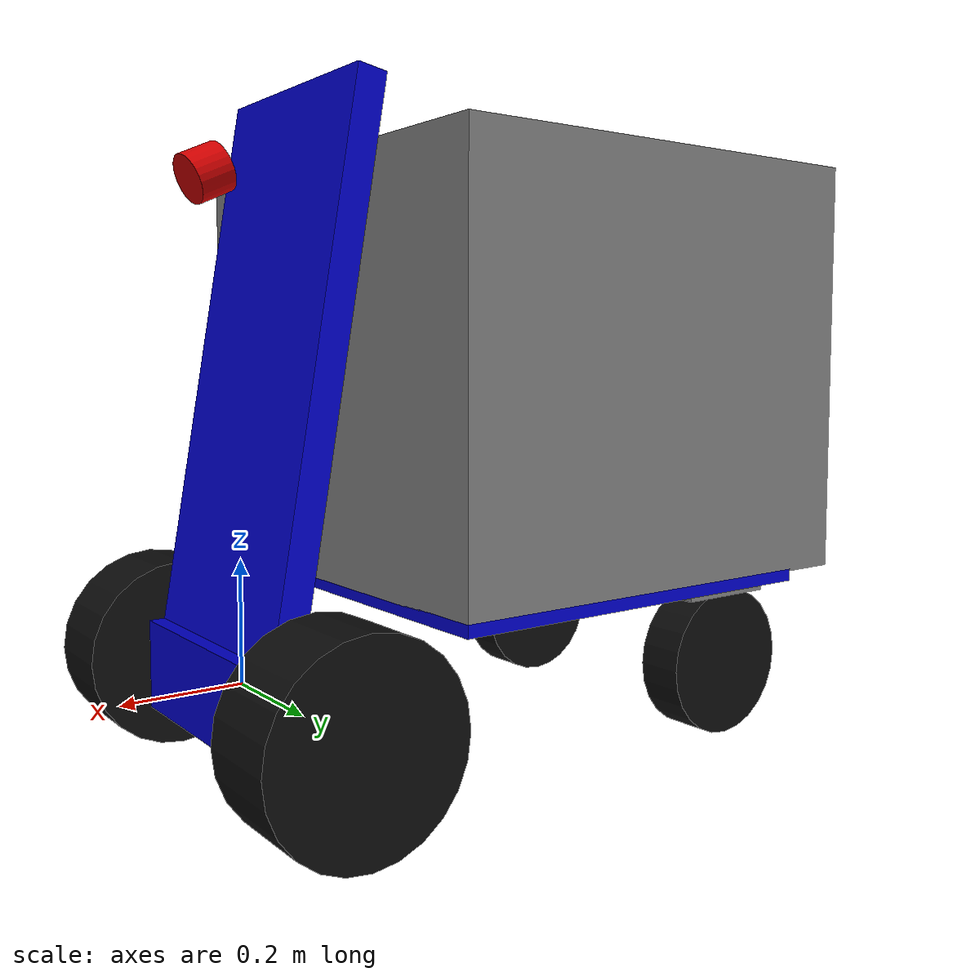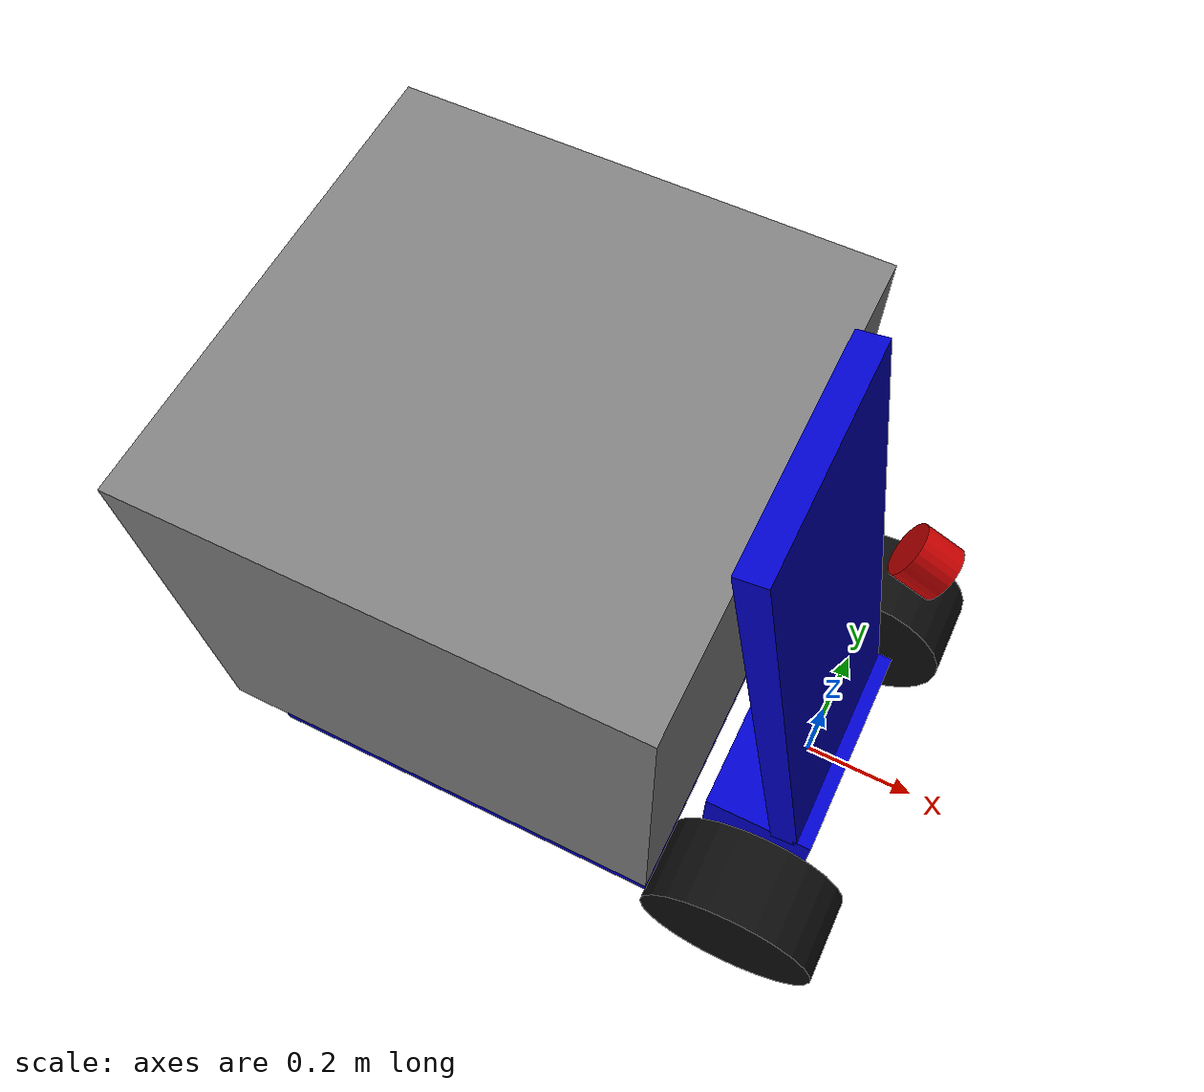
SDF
<?xml version="1.0" ?>
<sdf version="1.10">
  <model name="mk5_200">
    <static>false</static>

    <!-- ================== LINK PRINCIPAL (base_link) ================== -->
    <link name="base_link">
      <pose>0 0 0 0 0 0</pose>
      <inertial>
        <mass>54.0</mass>
        <inertia>
          <ixx>8.0</ixx><ixy>0</ixy><ixz>0</ixz>
          <iyy>8.0</iyy><iyz>0</iyz>
          <izz>8.0</izz>
        </inertia>
      </inertial>

      <!-- Bloc bas -->
      <collision name="base_block_col">
        <pose>-0.025 0 0 0 0 0</pose>
        <geometry><box><size>0.2 0.4 0.15</size></box></geometry>
      </collision>
      <visual name="base_block_vis">
        <pose>-0.025 0 0 0 0 0</pose>
        <geometry><box><size>0.2 0.4 0.15</size></box></geometry>
        <material>
          <ambient>0.0 0.0 0.8 1</ambient>
          <diffuse>0.0 0.0 0.8 1</diffuse>
        </material>
      </visual>

      <!-- Grande plaque -->

      <visual name="base_plate_vis">
        <pose>-0.5 0 0.143 0 0 0</pose>
        <geometry><box><size>0.7 0.8 0.02</size></box></geometry>
        <material>
          <ambient>0.0 0.0 0.8 1</ambient>
          <diffuse>0.0 0.0 0.8 1</diffuse>
        </material>
      </visual>

      <!-- Box haute -->
      <collision name="base_box_col">
        <pose>-0.55 0 0.5 0 0 0</pose>
        <geometry><box><size>0.8 0.8 0.7</size></box></geometry>
      </collision>
      <visual name="base_box_vis">
        <pose>-0.55 0 0.5 0 0 0</pose>
        <geometry><box><size>0.8 0.8 0.7</size></box></geometry>
        <material>
          <ambient>0.5 0.5 0.5 1</ambient>
          <diffuse>0.5 0.5 0.5 1</diffuse>
        </material>
      </visual>

      <!-- Plaque avant inclinée -->
      <collision name="front_plate_col">
        <pose>-0.05 0 0.5 0 1.4 0</pose>
        <geometry><box><size>0.9 0.4 0.05</size></box></geometry>
      </collision>
      <visual name="front_plate_vis">
        <pose>-0.05 0 0.5 0 1.4 0</pose>
        <geometry><box><size>0.9 0.4 0.05</size></box></geometry>
        <material>
          <ambient>0.0 0.0 0.8 1</ambient>
          <diffuse>0.0 0.0 0.8 1</diffuse>
        </material>
      </visual>
    </link>
    <!-- ================== FIN base_link ================== -->

    <!-- ================== SENSOR LIDAR ================== -->

<!-- ================== AIRY FRONT SENSOR ================== -->
<!-- ================== AIRY FRONT SENSOR ================== -->
<!-- ================== AIRY FRONT SENSOR ================== -->

<joint name="airy_front_joint" type="fixed">
  <parent>base_link</parent>
  <child>airy_front</child>
  <pose>0.05 0.0 0.8 0 2.0 0</pose> <!-- Relative position of airy_front to base_link -->
</joint>

<link name="airy_front">

  <!-- Collision -->
  <collision name="airy_front_col">
    <pose relative_to="airy_front_joint">0.0 0.0 0 0 0 0</pose>
    <geometry>
      <cylinder>
        <radius>0.04</radius>
        <length>0.06</length>
      </cylinder>
    </geometry>
  </collision>

  <!-- Visual -->
  <visual name="airy_front_vis">
    <pose relative_to="airy_front_joint">0.0 0.0 0 0 0 0</pose>
    <geometry>
      <cylinder>
        <radius>0.04</radius>
        <length>0.06</length>
      </cylinder>
    </geometry>
    <material>
      <ambient>0.8 0.0 0.0 1</ambient>
      <diffuse>0.8 0.0 0.0 1</diffuse>
    </material>
  </visual>

  <!-- LiDAR Sensor -->
  <sensor name="gpu_lidar" type="gpu_lidar">
    <pose relative_to="airy_front_joint">0 0 0 0 0 0</pose>
    <topic>/lidar</topic>
    <update_rate>10</update_rate>
    <ray>
      <scan>
        <horizontal>
          <samples>640</samples>
          <resolution>1</resolution>
          <min_angle>-1.396263</min_angle>
          <max_angle>1.396263</max_angle>
        </horizontal>
        <vertical>
          <samples>1</samples>
          <resolution>0.01</resolution>
          <min_angle>0</min_angle>
          <max_angle>0</max_angle>
        </vertical>
      </scan>
      <range>
        <min>0.08</min>
        <max>10.0</max>
        <resolution>0.01</resolution>
      </range>
    </ray>
    <always_on>1</always_on>
    <visualize>true</visualize>
  </sensor>

</link>

           <plugin
            filename="gz-sim-sensors-system"
            name="gz::sim::systems::Sensors">
            <render_engine>ogre2</render_engine>
        </plugin>

    <!-- ================== FIN SENSOR LIDAR ================== -->

    <!-- ================== ROUES MOTRICES ================== -->
    <link name="left_wheel">
      <pose>0 0.317 0 0 0 0</pose>
      <inertial>
        <mass>8.0</mass>
        <inertia>
          <ixx>0.01</ixx><ixy>0</ixy><ixz>0</ixz>
          <iyy>0.01</iyy><iyz>0</iyz>
          <izz>0.01</izz>
        </inertia>
      </inertial>
      <collision name="c">
        <pose>0 0 0 1.570796 0 0</pose>
        <geometry><cylinder><radius>0.162</radius><length>0.15</length></cylinder></geometry>
        <surface>
          <friction><ode><mu>1.0</mu><mu2>1.0</mu2></ode></friction>
        </surface>
      </collision>
      <visual name="v">
        <pose>0 0 0 1.570796 0 0</pose>
        <geometry><cylinder><radius>0.162</radius><length>0.15</length></cylinder></geometry>
        <material>
          <ambient>0.05 0.05 0.05 1</ambient>
          <diffuse>0.05 0.05 0.05 1</diffuse>
        </material>
      </visual>
    </link>
    <joint name="left_wheel_joint" type="revolute">
  <parent>base_link</parent>
  <child>left_wheel</child>
  <axis>
    <xyz>0 1 0</xyz>
    <!-- Limites de position très larges pour simuler rotation quasi infinie -->
    <limit>
      <lower>-1e16</lower>
      <upper>1e16</upper>
      <!-- Effort max : assez grand pour ne pas saturer, tu peux ajuster -->
      <effort>1e6</effort>
      <!-- Vitesse angulaire max (rad/s) : ici 50 rad/s (~477 rpm) -->
      <velocity>50.0</velocity>
    </limit>
    <!-- Optionnel: amortissement léger pour stabilité -->
    <dynamics>
      <damping>0.1</damping>
      <friction>0.0</friction>
    </dynamics>
  </axis>
</joint>

    <link name="right_wheel">
      <pose>0 -0.317 0 0 0 0</pose>
      <inertial>
        <mass>8.0</mass>
        <inertia>
          <ixx>0.01</ixx><ixy>0</ixy><ixz>0</ixz>
          <iyy>0.01</iyy><iyz>0</iyz>
          <izz>0.01</izz>
        </inertia>
      </inertial>
      <collision name="c">
        <pose>0 0 0 1.570796 0 0</pose>
        <geometry><cylinder><radius>0.162</radius><length>0.15</length></cylinder></geometry>
        <surface>
          <friction><ode><mu>1.0</mu><mu2>1.0</mu2></ode></friction>
        </surface>
      </collision>
      <visual name="v">
        <pose>0 0 0 1.570796 0 0</pose>
        <geometry><cylinder><radius>0.162</radius><length>0.15</length></cylinder></geometry>
        <material>
          <ambient>0.05 0.05 0.05 1</ambient>
          <diffuse>0.05 0.05 0.05 1</diffuse>
        </material>
      </visual>
    </link>
<joint name="right_wheel_joint" type="revolute">
  <parent>base_link</parent>
  <child>right_wheel</child>
  <axis>
    <xyz>0 1 0</xyz>
    <!-- Limites de position très larges pour simuler rotation quasi infinie -->
    <limit>
      <lower>-1e16</lower>
      <upper>1e16</upper>
      <!-- Effort max : assez grand pour ne pas saturer, tu peux ajuster -->
      <effort>1e6</effort>
      <!-- Vitesse angulaire max (rad/s) : ici 50 rad/s (~477 rpm) -->
      <velocity>50.0</velocity>
    </limit>
    <!-- Optionnel: amortissement léger pour stabilité -->
    <dynamics>
      <damping>0.1</damping>
      <friction>0.0</friction>
    </dynamics>
  </axis>
</joint>

  <!-- ================== CASTERS ================== -->
<!-- LEFT CASTER PLATE -->
<link name="left_caster_plate">
  <pose>-0.747 0.26 0.115 0 0 0</pose>
  <inertial>
    <mass>0.5</mass>
    <inertia>
      <ixx>0.001</ixx><ixy>0</ixy><ixz>0</ixz>
      <iyy>0.001</iyy><iyz>0</iyz>
      <izz>0.001</izz>
    </inertia>
  </inertial>

  <visual name="v">
    <geometry><box><size>0.18 0.18 0.01</size></box></geometry>
    <material>
      <ambient>0.5 0.5 0.5 1</ambient>
      <diffuse>0.5 0.5 0.5 1</diffuse>
    </material>
  </visual>
</link>

<joint name="left_caster_plate_joint" type="revolute">
  <parent>base_link</parent>
  <child>left_caster_plate</child>
  <axis>
    <xyz>0 0 1</xyz>
    <limit><lower>-3.14159</lower><upper>3.14159</upper></limit>
    <dynamics><damping>0.2</damping></dynamics>
  </axis>
</joint>

<!-- LEFT CASTER WHEEL -->
<link name="left_caster_wheel">
  <pose>-0.807 0.26 -0.025 0 0 0</pose>
  <inertial>
    <mass>2.0</mass>
    <inertia>
      <ixx>0.05</ixx><ixy>0</ixy><ixz>0</ixz>
      <iyy>0.05</iyy><iyz>0</iyz>
      <izz>0.05</izz>
    </inertia>
  </inertial>
  <collision name="c">
    <pose>0 0 0 1.570796 0 0</pose>
    <geometry><cylinder><radius>0.13</radius><length>0.08</length></cylinder></geometry>
  </collision>
  <visual name="v">
    <pose>0 0 0 1.570796 0 0</pose>
    <geometry><cylinder><radius>0.13</radius><length>0.08</length></cylinder></geometry>
    <material>
      <ambient>0.05 0.05 0.05 1</ambient>
      <diffuse>0.05 0.05 0.05 1</diffuse>
    </material>
  </visual>
</link>

<joint name="left_caster_wheel_joint" type="revolute">
  <parent>left_caster_plate</parent>
  <child>left_caster_wheel</child>
  <axis>
    <xyz>0 1 0</xyz>
    <limit><lower>-100000</lower><upper>100000</upper></limit>
    <dynamics>
      <damping>0.05</damping> <!-- Friction added via damping -->
      <friction>0.01</friction> <!-- Adding a small friction to stabilize -->
    </dynamics>
  </axis>
</joint>

<!-- RIGHT CASTER PLATE -->
<link name="right_caster_plate">
  <pose>-0.747 -0.26 0.115 0 0 0</pose>
  <inertial>
    <mass>0.5</mass>
    <inertia>
      <ixx>0.001</ixx><ixy>0</ixy><ixz>0</ixz>
      <iyy>0.001</iyy><iyz>0</iyz>
      <izz>0.001</izz>
    </inertia>
  </inertial>

  <visual name="v">
    <geometry><box><size>0.18 0.18 0.01</size></box></geometry>
    <material>
      <ambient>0.5 0.5 0.5 1</ambient>
      <diffuse>0.5 0.5 0.5 1</diffuse>
    </material>
  </visual>
</link>

<joint name="right_caster_plate_joint" type="revolute">
  <parent>base_link</parent>
  <child>right_caster_plate</child>
  <axis>
    <xyz>0 0 1</xyz>
    <limit><lower>-3.14159</lower><upper>3.14159</upper></limit>
    <dynamics><damping>0.2</damping></dynamics>
  </axis>
</joint>

<!-- RIGHT CASTER WHEEL -->
<link name="right_caster_wheel">
  <pose>-0.807 -0.26 -0.025 0 0 0</pose>
  <inertial>
    <mass>2.0</mass>
    <inertia>
      <ixx>0.05</ixx><ixy>0</ixy><ixz>0</ixz>
      <iyy>0.05</iyy><iyz>0</iyz>
      <izz>0.05</izz>
    </inertia>
  </inertial>
  <collision name="c">
    <pose>0 0 0 1.570796 0 0</pose>
    <geometry><cylinder><radius>0.13</radius><length>0.08</length></cylinder></geometry>
  </collision>
  <visual name="v">
    <pose>0 0 0 1.570796 0 0</pose>
    <geometry><cylinder><radius>0.13</radius><length>0.08</length></cylinder></geometry>
    <material>
      <ambient>0.05 0.05 0.05 1</ambient>
      <diffuse>0.05 0.05 0.05 1</diffuse>
    </material>
  </visual>
</link>

<joint name="right_caster_wheel_joint" type="revolute">
  <parent>right_caster_plate</parent>
  <child>right_caster_wheel</child>
  <axis>
    <xyz>0 1 0</xyz>
    <limit><lower>-100000</lower><upper>100000</upper></limit>
    <dynamics>
      <damping>0.05</damping> <!-- Friction added via damping -->
      <friction>0.01</friction> <!-- Adding a small friction to stabilize -->
    </dynamics>
  </axis>
</joint>

    <!-- ================== PLUGIN DIFFDRIVE ================== -->
    <plugin name="gz::sim::systems::DiffDrive"
        filename="libgz-sim8-diff-drive-system.so">
  <left_joint>left_wheel_joint</left_joint>
  <right_joint>right_wheel_joint</right_joint>
  <wheel_separation>0.634</wheel_separation>
  <wheel_radius>0.162</wheel_radius>
  <topic>cmd_vel</topic>
  <odom_publish_frequency>30</odom_publish_frequency>
</plugin>

  </model>
</sdf>
